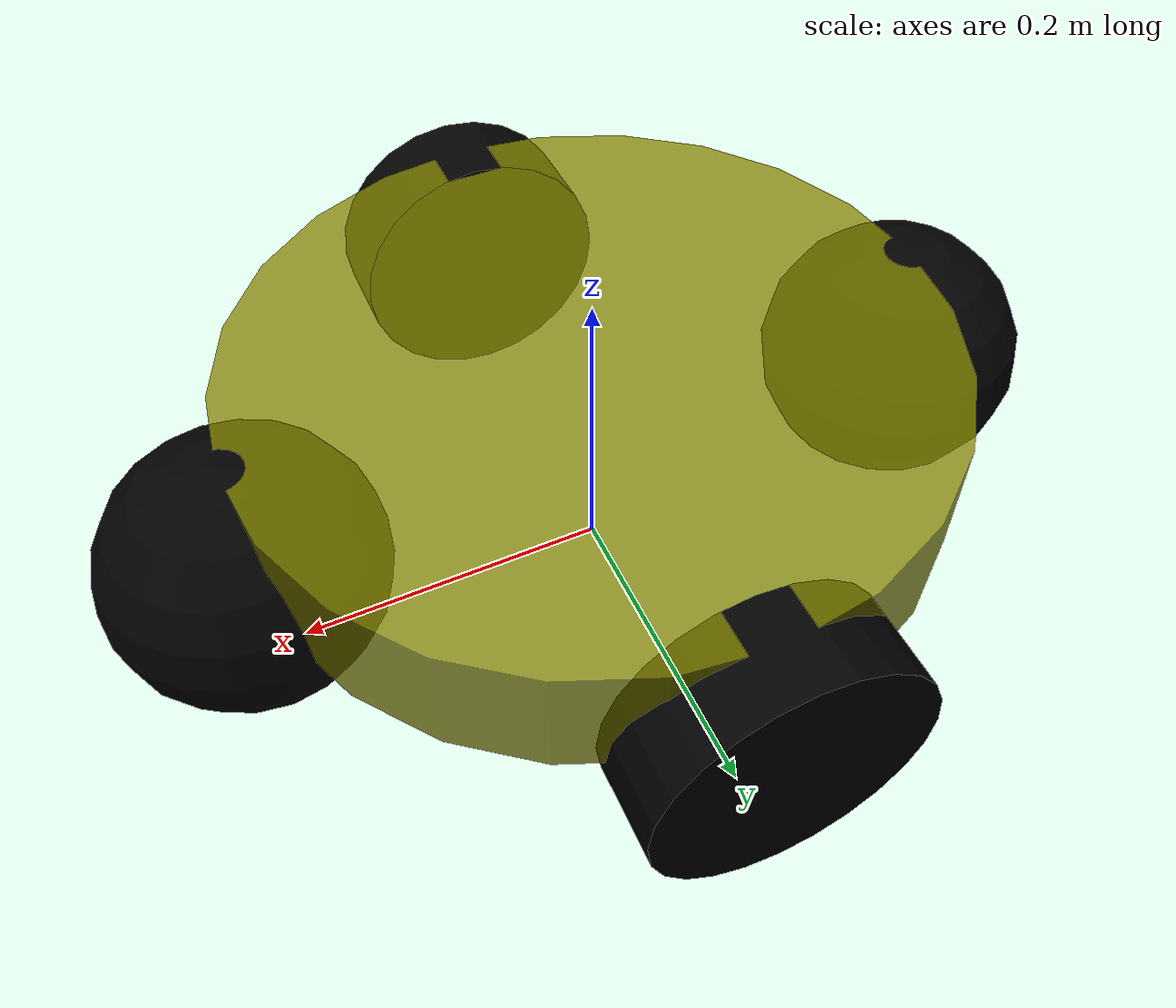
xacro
<robot name="base" xmlns:xacro="http://wiki.ros.org/xacro">
    <!--define color-->
    <material name="black">
        <color rgba="0 0 0 1"/>
    </material>
    <material name="yellow">
        <color rgba="0.5 0.5 0 0.8"/>
    </material>

    <!--property-->
    <xacro:property name="PI" value="3.1415927" />

    <!--driving wheel property-->
    <xacro:property name="wheel_driving_radius" value="0.085"/>
    <xacro:property name="wheel_driving_width" value="0.06"/>
    <xacro:property name="wheel_driving_between" value="0.44"/>
    <!--define driving wheel-->
    <xacro:macro name="wheel_driving" params="wheel_name flag">
        <link name="${wheel_name}">
            <visual>
                <geometry name="wheel_geometry">
                    <cylinder radius="${wheel_driving_radius}" length="${wheel_driving_width}"/>
                </geometry>
                <origin xyz="0 0 0" rpy="${PI/2} 0 0"/>
                <material name="black"/>
            </visual>
            <collision>
                <geometry name="wheel_geometry">
                    <cylinder radius="${wheel_driving_radius}" length="${wheel_driving_width}"/>
                    </geometry>
                <origin xyz="0.0 0.0 0.0" rpy="${PI/2} 0.0 0.0" />
            </collision>
            <xacro:cylinder_inertial_matrix m="10" r="${wheel_driving_radius}" h="${wheel_driving_width}"/>
        </link>
        <joint name="base_${wheel_name}_joint" type="continuous">
            <parent link="base_link"/>
            <child link="${wheel_name}"/>
            <origin xyz="0 ${(wheel_driving_between/2) * flag} 0" rpy="0 0 0"/>
            <axis xyz="0 1 0"/>
        </joint>
    </xacro:macro>

    <!--trainning wheel property-->
    <xacro:property name="wheel_trainning_radius" value="0.085"/>
    <xacro:property name="wheel_trainning_between" value="0.44"/>
    <!--define trainning wheel-->
    <xacro:macro name="wheel_trainning" params="wheel_name flag">
        <link name="${wheel_name}">
            <visual>
                <geometry name="wheel_geometry">
                    <sphere radius="${wheel_trainning_radius}"/>
                </geometry>
                <origin xyz="0 0 0" rpy="0 0 0"/>
                <material name="black"/>
            </visual>
            <collision>
                <geometry name="wheel_geometry">
                    <sphere radius="${wheel_trainning_radius}"/>
                </geometry>
                <origin xyz="0 0 0" rpy="0 0 0"/>
            </collision>
            <xacro:sphere_inertial_matrix m="2" r="${wheel_trainning_radius}"/>
        </link>

        <joint name="${wheel_name}_joint" type="continuous">
            <parent link="base_link"/>
            <child link="${wheel_name}"/>
            <origin xyz="${(wheel_trainning_between/2) * flag} 0 0" rpy="0 0 0"/>
            <axis xyz="1 1 1"/>
        </joint>
    </xacro:macro>

    <!--base_footprint-->
    <xacro:property name="base_footprint_radius" value="0.001"/>
    <link name="base_footprint">
        <visual>
            <geometry>
                <sphere radius="${base_footprint_radius}" />
            </geometry>
        </visual>
    </link>

    <!--base link property-->
    <xacro:property name="base_radius" value="0.22"/>
    <xacro:property name="base_length" value="0.08"/>
    <xacro:property name="base_margin_bottom" value="0.085"/>
    <!--base link-->
    <link name="base_link">
        <visual>
            <geometry name="base_geometry">
                <cylinder radius="${base_radius}" length="${base_length}"/>
            </geometry>
            <origin xyz="0 0 ${base_margin_bottom/2}" rpy="0 0 0"/>
            <material name="yellow"/>
        </visual>
        <collision>
            <geometry name="base_geometry">
                <cylinder radius="${base_radius}" length="${base_length}"/>
            </geometry>
            <origin xyz="0 0 0" rpy="0 0 0"/>
        </collision>
        <xacro:cylinder_inertial_matrix m="15" r="${base_radius}" h="${base_length}"/>
    </link>

    <joint name="base_link_joint" type="fixed">
        <parent link="base_footprint" />
        <child link="base_link" />
        <origin xyz="0 0 ${base_margin_bottom}" rpy="0 0 0"/>
    </joint>

    <!--left wheel-->
    <xacro:wheel_driving wheel_name="l_wheel" flag="1"/>

    <!--right wheel-->
    <xacro:wheel_driving wheel_name="r_wheel" flag="-1"/>

    <!--front wheel-->
    <xacro:wheel_trainning wheel_name="f_wheel" flag="1"/>

    <!--back wheel-->
    <xacro:wheel_trainning wheel_name="b_wheel" flag="-1"/>

</robot>
